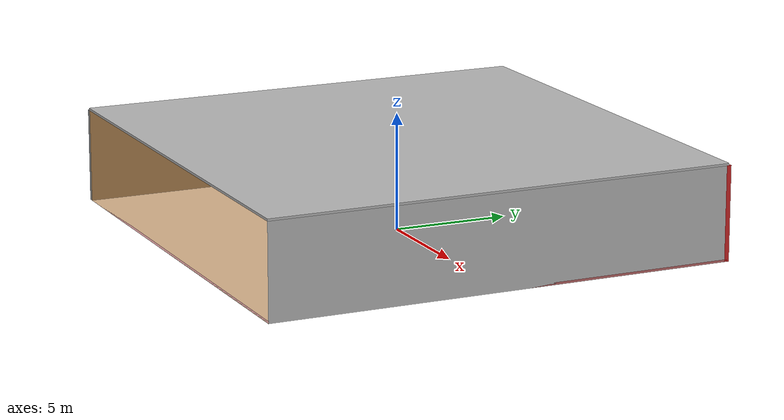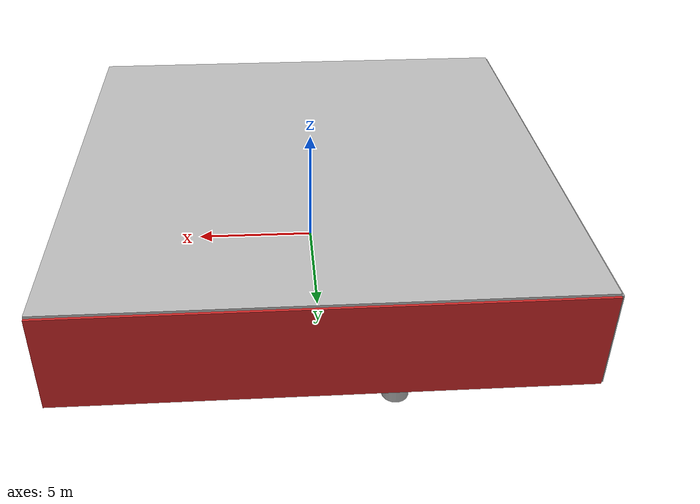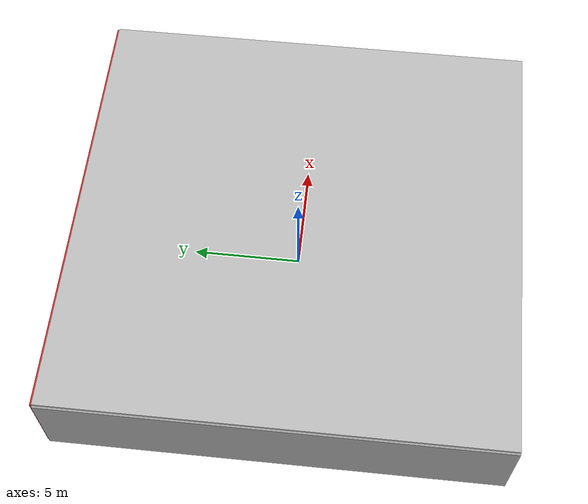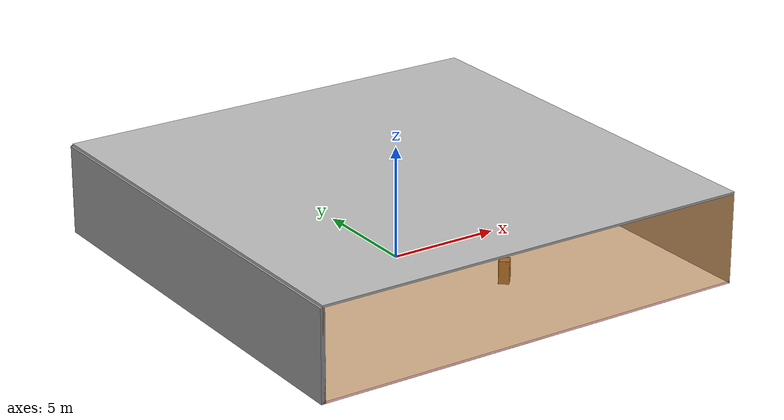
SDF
<sdf version="1.4">
 <world name="default">
  <physics type="ode">
   <max_step_size>0.001</max_step_size>
   <real_time_factor>1</real_time_factor>
   <real_time_update_rate>1000</real_time_update_rate>
   <gravity>0 0 -9.8</gravity>
  </physics>
  <scene><ambient>0.4 0.4 0.4 1</ambient><background>0.7 0.7 0.7 1</background><shadows>1</shadows></scene>
  <model name="Surrounding">
   <static>1</static>
   <link name="Ceiling">
    <collision name="Ceiling_Collision"><geometry><box><size>20 20 0.1</size></box></geometry></collision>
    <visual name="Ceiling_Visual">
     <geometry><box><size>20 20 0.1</size></box></geometry>
     <material>
      <script><uri>file://media/materials/scripts/gazebo.material</uri><name>Gazebo/LightOn</name></script>
     </material>
    </visual>
    <pose>0 0 4.05 0 0 0</pose>
   </link>
   <link name="Wall_South">
    <collision name="Wall_South_Collision">
     <geometry><box><size>20 0 4</size></box></geometry>
     <pose>0 0 2 0 -0 0</pose>
    </collision>
    <visual name="Wall_South_Visual">
     <pose>0 0 2 0 -0 0</pose>
     <geometry><box><size>20 0 4</size></box></geometry>
     <material>
      <script>
       <uri>file://media/materials/scripts/gazebo.material</uri>
       <name>Gazebo/OrangeTransparent</name>
      </script>
     </material>
    </visual>
    <velocity_decay><linear>0</linear><angular>0</angular></velocity_decay>
    <pose>0 -10 0 0 -0 0</pose>
   </link>
   <link name="Wall_East">
    <collision name="Wall_21_Collision">
     <geometry><box><size>20 0 4</size></box></geometry>
     <pose>0 0 2 0 -0 0</pose>
    </collision>
    <visual name="Wall_21_Visual">
     <pose>0 0 2 0 -0 0</pose>
     <geometry><box><size>20 0 4</size></box></geometry>
     <material>
      <script><uri>file://media/materials/scripts/gazebo.material</uri><name>Gazebo/CloudySky</name></script>
     </material>
    </visual>
    <velocity_decay><linear>0</linear><angular>0</angular></velocity_decay>
    <pose>10 0 0 0 -0 1.5708</pose>
   </link>
   <link name="Wall_North">
    <collision name="Wall_22_Collision">
     <geometry><box><size>20 0.2 4</size></box></geometry>
     <pose>0 0 2 0 -0 0</pose>
    </collision>
    <visual name="Wall_22_Visual">
     <pose>0 0 2 0 -0 0</pose>
     <geometry><box><size>20 0.2 4</size></box></geometry>
     <material>
      <script><uri>file://media/materials/scripts/gazebo.material</uri><name>Gazebo/RedGlow</name></script>
     </material>
    </visual>
    <velocity_decay><linear>0</linear><angular>0</angular></velocity_decay>
    <pose>0 10 0 0 -0 0</pose>
   </link>
   <link name="Wall_West">
    <collision name="Wall_23_Collision">
     <geometry><box><size>20 0.2 4</size></box></geometry>
     <pose>0 0 2 0 -0 0</pose>
    </collision>
    <visual name="Wall_23_Visual">
     <pose>0 0 2 0 -0 0</pose>
     <geometry><box><size>20 0.2 4</size></box></geometry>
     <material>
      <script><uri>file://media/materials/scripts/gazebo.material</uri><name>Gazebo/Grey</name></script>
     </material>
    </visual>
    <velocity_decay><linear>0</linear><angular>0</angular></velocity_decay>
    <pose>-10 0 0 0 0 -1.5708</pose>
   </link>
   <link name="Ground_link">
    <collision name="collision">
     <pose>0 0 .05 0 -0 0</pose>
     <geometry><box><size>20 20 0.1</size></box></geometry>
    </collision>
    <visual name="visual">
     <pose>0 0 .05 0 -0 0</pose>
     <geometry><box><size>20 20 0.1</size></box></geometry>
     <material>
      <script><uri>file://media/materials/scripts/gazebo.material</uri><name>Gazebo/RedTransparent</name></script>
     </material>
    </visual>
   </link>
   <static>1</static>
  </model>
  <spherical_coordinates>
   <surface_model>EARTH_WGS84</surface_model>
   <latitude_deg>0</latitude_deg>
   <longitude_deg>0</longitude_deg>
   <elevation>0</elevation>
   <heading_deg>0</heading_deg>
  </spherical_coordinates>
  <light name="lightball_0" type="diffuse">
   <diffuse>0.8 0.8 0.8 1</diffuse>
   <specular>0.2 0.2 0.2 1</specular>
   <attenuation>
    <range>100</range>
    <constant>0.7</constant>
    <linear>0.01</linear>
    <quadratic>0.001</quadratic>
   </attenuation>
   <direction>-0.5 0.1 -0.9</direction>
   <pose>-8.36219033738 8.04511064725 1.12148646935 0 0 0</pose>
  </light>
  <light name="lightball_1" type="diffuse">
   <diffuse>0.8 0.8 0.8 1</diffuse>
   <specular>0.2 0.2 0.2 1</specular>
   <attenuation>
    <range>100</range>
    <constant>0.7</constant>
    <linear>0.01</linear>
    <quadratic>0.001</quadratic>
   </attenuation>
   <direction>-0.5 0.1 -0.9</direction>
   <pose>-2.32219308343 -5.54478867588 2.00352678575 0 0 0</pose>
  </light>
  <light name="lightball_2" type="diffuse">
   <diffuse>0.8 0.8 0.8 1</diffuse>
   <specular>0.2 0.2 0.2 1</specular>
   <attenuation>
    <range>100</range>
    <constant>0.7</constant>
    <linear>0.01</linear>
    <quadratic>0.001</quadratic>
   </attenuation>
   <direction>-0.5 0.1 -0.9</direction>
   <pose>2.81658745185 2.74353813859 2.78367201314 0 0 0</pose>
  </light>
  <include>
   <uri>model://textured_shapes</uri>
   <pose>-1.87034284483 8.2555984391 0 0 0 0.466092196378</pose>
  </include>
  <include><uri>model://cabinet</uri><pose>2.28996858736 -4.681408918 0 0 0 2.40209715202</pose></include>
  <include>
   <uri>model://construction_cone</uri>
   <pose>4.40495258135 4.84759264153 0 0 0 1.10927376169</pose>
  </include>
  <include><uri>model://cabinet</uri><pose>7.65686260208 8.10566297409 0 0 0 2.87699033522</pose></include>
 </world>
</sdf>

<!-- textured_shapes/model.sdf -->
<sdf version="1.6">
  <model name="textured_shapes">
    <pose>0 0 0.5 0 0 0</pose>
    <link name="box">
      <pose>0 -1.5 0 0 0 0</pose>
      <collision name="collision">
        <geometry>
          <box>
            <size>1 1 1</size>
          </box>
        </geometry>
      </collision>
      <visual name="visual">
        <geometry>
          <box>
            <size>1 1 1</size>
          </box>
        </geometry>
        <material>
          <script>
            <uri>model://../model_source/models/textured_shapes/materials/scripts</uri>
            <uri>model://../model_source/models/textured_shapes/materials/textures</uri>
            <name>TexturedShape/Squares</name>
          </script>
        </material>
      </visual>
    </link>
    <link name="sphere">
      <collision name="collision">
        <geometry>
          <sphere>
            <radius>0.5</radius>
          </sphere>
        </geometry>
      </collision>
      <visual name="visual">
        <geometry>
          <sphere>
            <radius>0.5</radius>
          </sphere>
        </geometry>
        <material>
          <script>
            <uri>model://../model_source/models/textured_shapes/materials/scripts</uri>
            <uri>model://../model_source/models/textured_shapes/materials/textures</uri>
            <name>TexturedShape/Squares</name>
          </script>
        </material>
      </visual>
    </link>
    <link name="cylinder">
      <pose>0 1.5 0 0 0 0</pose>
      <collision name="collision">
        <geometry>
          <cylinder>
            <radius>0.5</radius>
            <length>1</length>
          </cylinder>
        </geometry>
      </collision>
      <visual name="visual">
        <geometry>
          <cylinder>
            <radius>0.5</radius>
            <length>1</length>
          </cylinder>
        </geometry>
        <material>
          <script>
            <uri>model://../model_source/models/textured_shapes/materials/scripts</uri>
            <uri>model://../model_source/models/textured_shapes/materials/textures</uri>
            <name>TexturedShape/Squares</name>
          </script>
        </material>
      </visual>
    </link>
  </model>
</sdf>

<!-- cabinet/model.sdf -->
<sdf version="1.5">
  <model name="cabinet">
    <static>true</static>
    <link name="cabinet_bottom_plate">
      <inertial>
        <pose>0 0 -1 0 0 0</pose>
        <inertia>
          <ixx>2.050000</ixx>
          <ixy>0</ixy>
          <ixz>0</ixz>
          <iyy>2.050000</iyy>
          <iyz>0</iyz>
          <izz>2.050000</izz>
        </inertia>
        <mass>25.000000</mass>
      </inertial>
      <collision name="cabinet_bottom_plate_geom">
        <pose>0 0 0.010000 0 0 0</pose>
        <geometry>
          <box>
            <size>0.450000 0.450000 0.020000</size>
          </box>
        </geometry>
      </collision>
      <visual name="cabinet_bottom_plate_geom_visual">
        <pose>0 0 0.010000 0 0 0</pose>
        <geometry>
          <box>
            <size>0.450000 0.450000 0.020000</size>
          </box>
        </geometry>
        <material>
          <script>
            <uri>model://media/materials/scripts/gazebo.material</uri>
            <name>Gazebo/Wood</name>
          </script>
        </material>
      </visual>
      <collision name="cabinet_bottom_plate_geom_cabinet_back_plate">
        <pose>0.235000 0 0.510000 0 0 0</pose>
        <geometry>
          <box>
            <size>0.020000 0.450000 1.020000</size>
          </box>
        </geometry>
      </collision>
      <visual name="cabinet_bottom_plate_geom_cabinet_back_plate_visual">
        <pose>0.235000 0 0.510000 0 0 0</pose>
        <geometry>
          <box>
            <size>0.020000 0.450000 1.020000</size>
          </box>
        </geometry>
        <material>
          <script>
            <uri>model://media/materials/scripts/gazebo.material</uri>
            <name>Gazebo/Wood</name>
          </script>
        </material>
      </visual>
      <collision name="cabinet_bottom_plate_geom_cabinet_left_plate">
        <pose>0 0.235000 0.510000 0 0 0</pose>
        <geometry>
          <box>
            <size>0.450000 0.020000 1.020000</size>
          </box>
        </geometry>
      </collision>
      <visual name="cabinet_bottom_plate_geom_cabinet_left_plate_visual">
        <pose>0 0.235000 0.510000 0 0 0</pose>
        <geometry>
          <box>
            <size>0.450000 0.020000 1.020000</size>
          </box>
        </geometry>
        <material>
          <script>
            <uri>model://media/materials/scripts/gazebo.material</uri>
            <name>Gazebo/Wood</name>
          </script>
        </material>
      </visual>
      <collision name="cabinet_bottom_plate_geom_cabinet_middle_plate">
        <pose>0 0 0.510000 0 0 0</pose>
        <geometry>
          <box>
            <size>0.450000 0.450000 0.020000</size>
          </box>
        </geometry>
      </collision>
      <visual name="cabinet_bottom_plate_geom_cabinet_middle_plate_visual">
        <pose>0 0 0.510000 0 0 0</pose>
        <geometry>
          <box>
            <size>0.450000 0.450000 0.020000</size>
          </box>
        </geometry>
        <material>
          <script>
            <uri>model://media/materials/scripts/gazebo.material</uri>
            <name>Gazebo/Wood</name>
          </script>
        </material>
      </visual>
      <collision name="cabinet_bottom_plate_geom_cabinet_right_plate">
        <pose>0 -0.235000 0.510000 0 0 0</pose>
        <geometry>
          <box>
            <size>0.450000 0.020000 1.020000</size>
          </box>
        </geometry>
      </collision>
      <visual name="cabinet_bottom_plate_geom_cabinet_right_plate_visual">
        <pose>0 -0.235000 0.510000 0 0 0</pose>
        <geometry>
          <box>
            <size>0.450000 0.020000 1.020000</size>
          </box>
        </geometry>
        <material>
          <script>
            <uri>model://media/materials/scripts/gazebo.material</uri>
            <name>Gazebo/Wood</name>
          </script>
        </material>
      </visual>
      <collision name="cabinet_bottom_plate_geom_cabinet_top_plate">
        <pose>0 0 1.010000 0 0 0</pose>
        <geometry>
          <box>
            <size>0.450000 0.450000 0.020000</size>
          </box>
        </geometry>
      </collision>
      <visual name="cabinet_bottom_plate_geom_cabinet_top_plate_visual">
        <pose>0 0 1.010000 0 0 0</pose>
        <geometry>
          <box>
            <size>0.450000 0.450000 0.020000</size>
          </box>
        </geometry>
        <material>
          <script>
            <uri>model://media/materials/scripts/gazebo.material</uri>
            <name>Gazebo/Wood</name>
          </script>
        </material>
      </visual>
    </link>
  </model>
</sdf>

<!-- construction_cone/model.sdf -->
<sdf version="1.5">
  <model name="Construction Cone">
    <link name="link">
      <collision name="collision">
        <geometry>
          <mesh>
            <scale>10 10 10</scale>
            <uri>file://isr-testbed/construction_cone/meshes/construction_cone.dae</uri>
          </mesh>
        </geometry>
      </collision>
      <visual name="visual">
        <geometry>
          <mesh>
            <scale>10 10 10</scale>
            <uri>file://isr-testbed/construction_cone/meshes/construction_cone.dae</uri>
          </mesh>
        </geometry>
      </visual>
    </link>
  </model>
</sdf>
